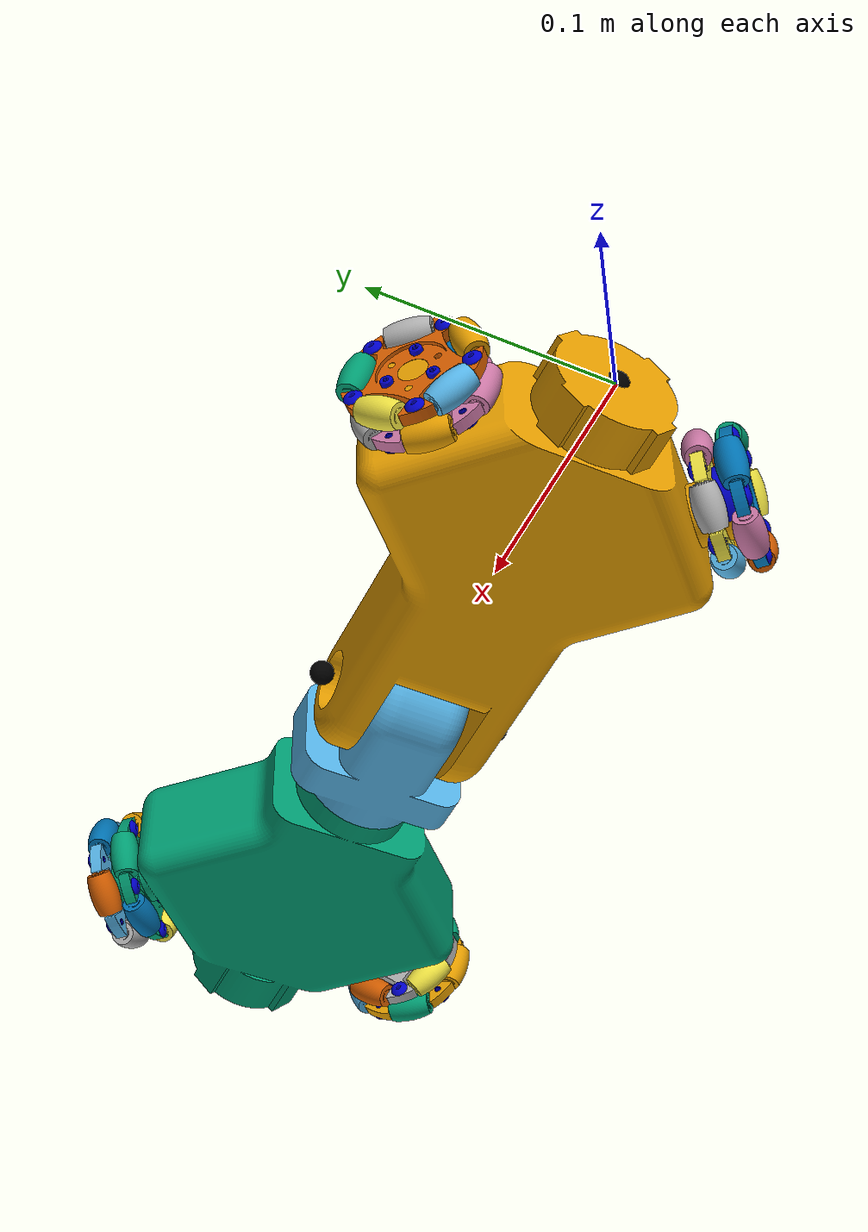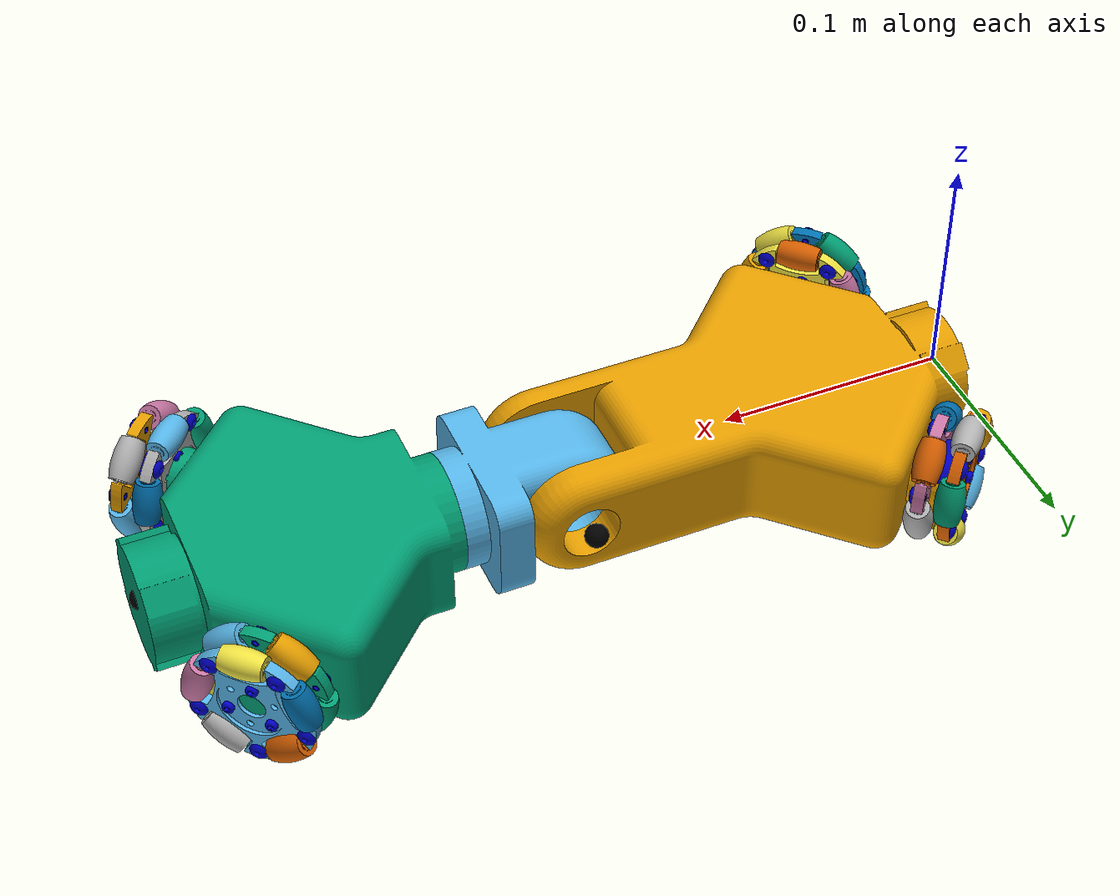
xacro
<?xml version="1.0"?>

 <robot name="mars" xmlns:xacro="http://ros.org/wiki/xacro">

<xacro:include filename="$(find my_mars_description)/urdf/materials.xacro" />

<xacro:include filename="$(find my_mars_description)/urdf/mars_modul_macro.urdf.xacro" />

<xacro:include filename="$(find my_mars_description)/urdf/mars.gazebo.xacro" />
<xacro:include filename="$(find my_mars_description)/urdf/mars.transmission.xacro" />
<xacro:include filename="$(find my_mars_description)/urdf/mars_wheel_macro.urdf.xacro" />

  <xacro:modul modul_num="1"/>

</robot>

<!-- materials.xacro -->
<robot xmlns:xacro="http://www.ros.org/wiki/xacro">
    <material name="red">
        <color rgba="0.8 0 0 1"/>
    </material>

    <material name="green">
        <color rgba="0 0.8 0 1"/>
    </material>

    <material name="blue">
        <color rgba="0 0 0.8 1"/>
    </material>

    <material name="white">
        <color rgba="1 1 1 1" />
    </material>

    <material name="black">
        <color rgba="0 0 0 1" />
    </material>

</robot>

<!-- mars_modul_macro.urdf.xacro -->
<robot name="modul1" xmlns:xacro="http://ros.org/wiki/xacro">

<xacro:include filename="$(find my_mars_description)/urdf/inert.xacro" />

<xacro:macro name="modul" params="modul_num">
  <link name="bodyZ_${modul_num}">
     <xacro:box_inertial w="0.07" h="0.035" d="0.02" m="0.05"/>
    <collision>
      <origin xyz="-0.05 0.108 -0.045" rpy="${pi/2} 0 0"/>
      <geometry>
        <mesh filename="package://my_mars_description/meshes/link1.stl" scale="0.001 0.001 0.001"/>
      </geometry>
    </collision>
    <visual>
      <origin xyz="-0.05 0.108 -0.045" rpy="${pi/2} 0 0"/>
      <geometry>
        <mesh filename="package://my_mars_description/meshes/link1.stl" scale="0.001 0.001 0.001"/>
      </geometry>
    </visual>

  </link>

  <joint name="axial_roll_joint_${modul_num}" type="continuous">
     <origin xyz="0.1375 0 0" rpy="0 0 0"/>
     <parent link="bodyZ_${modul_num}" />
     <child link="leverX_${modul_num}" />
     <axis xyz="0 1 0"/>
     <limit effort="100.0" lower="-${pi/2}" upper="${pi/2}" velocity="5.0" />
   </joint>

   <link name="leverX_${modul_num}">
    <xacro:box_inertial w="0.07" h="0.125" d="0.02" m="0.25"/>
    <collision>
      <origin xyz="-0.1875 0.108 -0.045" rpy="${pi/2} 0 0"/>
      <geometry>
        <mesh filename="package://my_mars_description/meshes/link2.stl" scale="0.001 0.001 0.001"/>
      </geometry>
    </collision>
    <visual>
      <origin xyz="-0.1875 0.108 -0.045" rpy="${pi/2} 0 0"/>
      <geometry>
        <mesh filename="package://my_mars_description/meshes/link2.stl" scale="0.001 0.001 0.001"/>
      </geometry>
    </visual>

  </link>

  <joint name="axial_pitch_joint_${modul_num}" type="continuous">
     <origin xyz="0 0 0" rpy="0 0 0"/>
     <parent link="leverX_${modul_num}" />
     <child link="bodyX_${modul_num}" />
     <axis xyz="1 0 0"/>
     <limit effort="100.0" lower="-${pi/2}" upper="${pi/2}" velocity="5.0" />
   </joint>

   <link name="bodyX_${modul_num}">
     <xacro:box_inertial w="0.07" h="0.035" d="0.02" m="0.05"/>
    <collision>
      <origin xyz="-0.1875 0.108 -0.045" rpy="${pi/2} 0 0"/>
      <geometry>
        <mesh filename="package://my_mars_description/meshes/link3.stl" scale="0.001 0.001 0.001"/>
      </geometry>
    </collision>
    <visual>
      <origin xyz="-0.1875 0.108 -0.045" rpy="${pi/2} 0 0"/>
      <geometry>
        <mesh filename="package://my_mars_description/meshes/link3.stl" scale="0.001 0.001 0.001"/>
      </geometry>
    </visual>
  </link>

  <joint name="wheel_fixed1_${modul_num}" type="fixed">
    <origin xyz="-0.01 0.065 0" rpy="0 0 ${pi/4}" />
    <parent link="bodyZ_${modul_num}" />
    <child link="empty_wheel_1_${modul_num}" />
  </joint>

  <xacro:wheel wheel_num="1" modul_num="${modul_num}"/>-->

  <joint name="wheel_fixed2_${modul_num}" type="fixed">
    <origin xyz="-0.01 -0.065 0" rpy="0 0 -${pi/4}" />
    <parent link="bodyZ_${modul_num}" />
    <child link="empty_wheel_2_${modul_num}" />
  </joint>

  <xacro:wheel wheel_num="2" modul_num="${modul_num}"/>-->

  <joint name="wheel_fixed3_${modul_num}" type="fixed">
    <origin xyz="0.15 0.065 0" rpy="0 0 -${pi/4}" />
    <parent link="bodyX_${modul_num}" />
    <child link="empty_wheel_3_${modul_num}" />
  </joint>

  <xacro:wheel wheel_num="3" modul_num="${modul_num}"/>-->

  <joint name="wheel_fixed4_${modul_num}" type="fixed">
    <origin xyz="0.15 -0.065 0" rpy="0 0 ${pi/4}" />
    <parent link="bodyX_${modul_num}" />
    <child link="empty_wheel_4_${modul_num}" />
  </joint>

  <xacro:wheel wheel_num="4" modul_num="${modul_num}"/>-->

   <joint name="left_connector_joint_${modul_num}" type="fixed">
    <origin xyz="0.1375 0.04 0" rpy="0 0 0" />
    <parent link="bodyZ_${modul_num}" />
    <child link="left_connector_${modul_num}" />
  </joint>
  <xacro:empty_link name="left_connector_${modul_num}"/>

   <joint name="right_connector_joint_${modul_num}" type="fixed">
    <origin xyz="0.1375 -0.038 0" rpy="0 0 0" />
    <parent link="bodyZ_${modul_num}" />
    <child link="right_connector_${modul_num}" />
  </joint>
  <xacro:empty_link name="right_connector_${modul_num}"/>

   <joint name="back_connector_joint_${modul_num}" type="fixed">
    <origin xyz="0.04 0 0" rpy="0 0 0" />
    <parent link="back_connector_${modul_num}"/>
    <child link="bodyZ_${modul_num}" />
  </joint>
  <xacro:empty_link name="back_connector_${modul_num}"/>

   <joint name="front_connector_joint_${modul_num}" type="fixed">
    <origin xyz="0.1775 0 0" rpy="0 0 0" />
    <parent link="bodyX_${modul_num}" />
    <child link="front_connector_${modul_num}" />
  </joint>
  <xacro:empty_link name="front_connector_${modul_num}"/>
</xacro:macro>

<xacro:macro name="modul_left" params="modul_num">
  <link name="bodyZ_${modul_num}">
    <xacro:empty_inertial />
    <collision>
      <origin xyz="-0.05 0.108 -0.045" rpy="${pi/2} 0 0"/>
      <geometry>
        <mesh filename="package://my_mars_description/meshes/link1.stl" scale="0.001 0.001 0.001"/>
      </geometry>
    </collision>
    <visual>
      <origin xyz="-0.05 0.108 -0.045" rpy="${pi/2} 0 0"/>
      <geometry>
        <mesh filename="package://my_mars_description/meshes/link1.stl" scale="0.001 0.001 0.001"/>
      </geometry>
    </visual>

  </link>

  <joint name="axial_roll_joint_${modul_num}" type="revolute">
     <origin xyz="0.1375 0 0" rpy="0 0 0"/>
     <parent link="bodyZ_${modul_num}" />
     <child link="leverX_${modul_num}" />
     <axis xyz="0 1 0"/>
     <limit effort="100.0" lower="-${pi/2}" upper="${pi/2}" velocity="5.0" />
   </joint>

   <link name="leverX_${modul_num}">
    <xacro:empty_inertial />
    <collision>
      <origin xyz="-0.1875 0.108 -0.045" rpy="${pi/2} 0 0"/>
      <geometry>
        <mesh filename="package://my_mars_description/meshes/link2.stl" scale="0.001 0.001 0.001"/>
      </geometry>
    </collision>
    <visual>
      <origin xyz="-0.1875 0.108 -0.045" rpy="${pi/2} 0 0"/>
      <geometry>
        <mesh filename="package://my_mars_description/meshes/link2.stl" scale="0.001 0.001 0.001"/>
      </geometry>
    </visual>

  </link>

  <joint name="axial_pitch_joint_${modul_num}" type="revolute">
     <origin xyz="0 0 0" rpy="0 0 0"/>
     <parent link="leverX_${modul_num}" />
     <child link="bodyX_${modul_num}" />
     <axis xyz="1 0 0"/>
     <limit effort="100.0" lower="-${pi/2}" upper="${pi/2}" velocity="5.0" />
   </joint>

   <link name="bodyX_${modul_num}">
    <xacro:empty_inertial />
    <collision>
      <origin xyz="-0.1875 0.108 -0.045" rpy="${pi/2} 0 0"/>
      <geometry>
        <mesh filename="package://my_mars_description/meshes/link3.stl" scale="0.001 0.001 0.001"/>
      </geometry>
    </collision>
    <visual>
      <origin xyz="-0.1875 0.108 -0.045" rpy="${pi/2} 0 0"/>
      <geometry>
        <mesh filename="package://my_mars_description/meshes/link3.stl" scale="0.001 0.001 0.001"/>
      </geometry>
    </visual>
  </link>

  <joint name="wheel_fixed1_${modul_num}" type="fixed">
    <origin xyz="-0.01 0.065 0" rpy="0 0 ${pi/4}" />
    <parent link="bodyZ_${modul_num}" />
    <child link="empty_wheel_1_${modul_num}" />
  </joint>

  <xacro:wheel wheel_num="1" modul_num="${modul_num}"/>-->

  <joint name="wheel_fixed2_${modul_num}" type="fixed">
    <origin xyz="-0.01 -0.065 0" rpy="0 0 -${pi/4}" />
    <parent link="bodyZ_${modul_num}" />
    <child link="empty_wheel_2_${modul_num}" />
  </joint>

  <xacro:wheel wheel_num="2" modul_num="${modul_num}"/>-->

  <joint name="wheel_fixed3_${modul_num}" type="fixed">
    <origin xyz="0.15 0.065 0" rpy="0 0 -${pi/4}" />
    <parent link="bodyX_${modul_num}" />
    <child link="empty_wheel_3_${modul_num}" />
  </joint>

  <xacro:wheel wheel_num="3" modul_num="${modul_num}"/>-->

  <joint name="wheel_fixed4_${modul_num}" type="fixed">
    <origin xyz="0.15 -0.065 0" rpy="0 0 ${pi/4}" />
    <parent link="bodyX_${modul_num}" />
    <child link="empty_wheel_4_${modul_num}" />
  </joint>

  <xacro:wheel wheel_num="4" modul_num="${modul_num}"/>-->

   <joint name="left_connector_joint_${modul_num}" type="fixed">
    <origin xyz="-0.1375 -0.04 0" rpy="0 0 0" />
    <parent link="left_connector_${modul_num}" />
    <child link="bodyZ_${modul_num}" />
  </joint>
  <xacro:empty_link name="left_connector_${modul_num}"/>

   <joint name="right_connector_joint_${modul_num}" type="fixed">
    <origin xyz="0.1375 -0.038 0" rpy="0 0 0" />
    <parent link="bodyZ_${modul_num}" />
    <child link="right_connector_${modul_num}" />
  </joint>
  <xacro:empty_link name="right_connector_${modul_num}"/>

   <joint name="back_connector_joint_${modul_num}" type="fixed">
    <origin xyz="0.04 0 0" rpy="0 0 0" />
    <parent link="bodyZ_${modul_num}"/>
    <child link="back_connector_${modul_num}" />
  </joint>
  <xacro:empty_link name="back_connector_${modul_num}"/>

   <joint name="front_connector_joint_${modul_num}" type="fixed">
    <origin xyz="0.1775 0 0" rpy="0 0 0" />
    <parent link="bodyX_${modul_num}" />
    <child link="front_connector_${modul_num}" />
  </joint>
  <xacro:empty_link name="front_connector_${modul_num}"/>
</xacro:macro>

<xacro:macro name="modul_right" params="modul_num">
  <link name="bodyZ_${modul_num}">
    <xacro:empty_inertial />
    <collision>
      <origin xyz="-0.05 0.108 -0.045" rpy="${pi/2} 0 0"/>
      <geometry>
        <mesh filename="package://my_mars_description/meshes/link1.stl" scale="0.001 0.001 0.001"/>
      </geometry>
    </collision>
    <visual>
      <origin xyz="-0.05 0.108 -0.045" rpy="${pi/2} 0 0"/>
      <geometry>
        <mesh filename="package://my_mars_description/meshes/link1.stl" scale="0.001 0.001 0.001"/>
      </geometry>
    </visual>

  </link>

  <joint name="axial_roll_joint_${modul_num}" type="revolute">
     <origin xyz="0.1375 0 0" rpy="0 0 0"/>
     <parent link="bodyZ_${modul_num}" />
     <child link="leverX_${modul_num}" />
     <axis xyz="0 1 0"/>
     <limit effort="100.0" lower="-${pi/2}" upper="${pi/2}" velocity="5.0" />
   </joint>

   <link name="leverX_${modul_num}">
    <xacro:empty_inertial />
    <collision>
      <origin xyz="-0.1875 0.108 -0.045" rpy="${pi/2} 0 0"/>
      <geometry>
        <mesh filename="package://my_mars_description/meshes/link2.stl" scale="0.001 0.001 0.001"/>
      </geometry>
    </collision>
    <visual>
      <origin xyz="-0.1875 0.108 -0.045" rpy="${pi/2} 0 0"/>
      <geometry>
        <mesh filename="package://my_mars_description/meshes/link2.stl" scale="0.001 0.001 0.001"/>
      </geometry>
    </visual>
  </link>

  <joint name="axial_pitch_joint_${modul_num}" type="revolute">
     <origin xyz="0 0 0" rpy="0 0 0"/>
     <parent link="leverX_${modul_num}" />
     <child link="bodyX_${modul_num}" />
     <axis xyz="1 0 0"/>
     <limit effort="100.0" lower="-${pi/2}" upper="${pi/2}" velocity="5.0" />
   </joint>

   <link name="bodyX_${modul_num}">
    <xacro:empty_inertial />
    <collision>
      <origin xyz="-0.1875 0.108 -0.045" rpy="${pi/2} 0 0"/>
      <geometry>
        <mesh filename="package://my_mars_description/meshes/link3.stl" scale="0.001 0.001 0.001"/>
      </geometry>
    </collision>
    <visual>
      <origin xyz="-0.1875 0.108 -0.045" rpy="${pi/2} 0 0"/>
      <geometry>
        <mesh filename="package://my_mars_description/meshes/link3.stl" scale="0.001 0.001 0.001"/>
      </geometry>
    </visual>
  </link>

  <joint name="wheel_fixed1_${modul_num}" type="fixed">
    <origin xyz="-0.01 0.065 0" rpy="0 0 ${pi/4}" />
    <parent link="bodyZ_${modul_num}" />
    <child link="empty_wheel_1_${modul_num}" />
  </joint>

  <xacro:wheel wheel_num="1" modul_num="${modul_num}"/>-->

  <joint name="wheel_fixed2_${modul_num}" type="fixed">
    <origin xyz="-0.01 -0.065 0" rpy="0 0 -${pi/4}" />
    <parent link="bodyZ_${modul_num}" />
    <child link="empty_wheel_2_${modul_num}" />
  </joint>

  <xacro:wheel wheel_num="2" modul_num="${modul_num}"/>-->

  <joint name="wheel_fixed3_${modul_num}" type="fixed">
    <origin xyz="0.15 0.065 0" rpy="0 0 -${pi/4}" />
    <parent link="bodyX_${modul_num}" />
    <child link="empty_wheel_3_${modul_num}" />
  </joint>

  <xacro:wheel wheel_num="3" modul_num="${modul_num}"/>-->

  <joint name="wheel_fixed4_${modul_num}" type="fixed">
    <origin xyz="0.15 -0.065 0" rpy="0 0 ${pi/4}" />
    <parent link="bodyX_${modul_num}" />
    <child link="empty_wheel_4_${modul_num}" />
  </joint>

  <xacro:wheel wheel_num="4" modul_num="${modul_num}"/>-->

   <joint name="left_connector_joint_${modul_num}" type="fixed">
    <origin xyz="0.1375 0.04 0" rpy="0 0 0" />
    <parent link="bodyZ_${modul_num}" />
    <child link="left_connector_${modul_num}" />
  </joint>
  <xacro:empty_link name="left_connector_${modul_num}"/>

   <joint name="right_connector_joint_${modul_num}" type="fixed">
    <origin xyz="-0.1375 0.038 0" rpy="0 0 0" />
    <parent link="right_connector_${modul_num}" />
    <child link="bodyZ_${modul_num}" />
  </joint>
  <xacro:empty_link name="right_connector_${modul_num}"/>

   <joint name="back_connector_joint_${modul_num}" type="fixed">
    <origin xyz="-0.04 0 0" rpy="0 0 0" />
    <parent link="bodyZ_${modul_num}"/>
    <child link="back_connector_${modul_num}"/>
  </joint>
  <xacro:empty_link name="back_connector_${modul_num}"/>

   <joint name="front_connector_joint_${modul_num}" type="fixed">
    <origin xyz="0.1775 0 0" rpy="0 0 0" />
    <parent link="bodyX_${modul_num}" />
    <child link="front_connector_${modul_num}" />
  </joint>
  <xacro:empty_link name="front_connector_${modul_num}"/>
</xacro:macro>

</robot>

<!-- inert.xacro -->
<robot xmlns:xacro="http://www.ros.org/wiki/xacro">
    <xacro:macro name="empty_inertial" params="">
        <inertial>
            <mass value="0.0001" />
            <inertia
                    ixx="0.0001" ixy="0.0" ixz="0.0"
                    iyy="0.0001" iyz="0.0"
                    izz="0.0001" />
        </inertial>
    </xacro:macro>

    <xacro:macro name="empty_gazebo_link" params="">
        <visual>
            <geometry>
                <sphere radius="0.005"/>
            </geometry>
            <material name="red" />
        </visual>
        <xacro:empty_inertial />
    </xacro:macro>

    <xacro:macro name="cylinder_inertial" params="r l m">
        <inertial>
            <mass value="${m}" />
            <inertia
                    ixx="${(1.0/12.0)*m*(3.0*r*r + l*l)}" ixy="0.0" ixz="0.0"
                    iyy="${(1.0/12.0)*m*(3.0*r*r + l*l)}" iyz="0.0"
                    izz="${(1.0/2.0)*m*r*r}" />
        </inertial>
    </xacro:macro>

    <xacro:macro name="box_inertial" params="w h d m">
        <inertial>
            <mass value="${m}" />
            <inertia
                    ixx="${(1.0/12.0)*m*(h*h + d*d)}" ixy="0.0" ixz="0.0"
                    iyy="${(1.0/12.0)*m*(w*w + d*d)}" iyz="0.0"
                    izz="${(1.0/12.0)*m*(w*w + h*h)}" />
        </inertial>
    </xacro:macro>

</robot>

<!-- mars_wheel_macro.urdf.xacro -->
<robot name="wheel" xmlns:xacro="http://ros.org/wiki/xacro">

  <xacro:include filename="$(find my_mars_description)/urdf/inert.xacro" />

    <xacro:macro name="empty_link" params="name">
      <link name="${name}">
        <visual>
          <geometry>
            <sphere radius="0.005"/>
          </geometry>
          <material name="black" />
        </visual>
        <xacro:empty_inertial />
      </link>
    </xacro:macro>

<xacro:macro name="wheel" params="wheel_num modul_num">

  <xacro:empty_link name="empty_wheel_${wheel_num}_${modul_num}"/>

  <joint name="wheel_continuous_${wheel_num}_${modul_num}" type="fixed">
    <origin xyz="0 0 0" rpy="0 0 0"/>
    <axis xyz="0 1 0" />
    <parent link="empty_wheel_${wheel_num}_${modul_num}"/>
    <child link="base_wheel_link_${wheel_num}_${modul_num}"/>
  </joint>
  <xacro:SimpleTransmissionVel joint="wheel_continuous_${wheel_num}_${modul_num}"/>

  <link name="base_wheel_link_${wheel_num}_${modul_num}">
    <xacro:empty_inertial />
    <collision>
      <origin xyz="0.043 0.0945 -0.152" rpy="0 -${pi/4} ${pi/2}"/>
      <geometry>
        <mesh filename="package://my_mars_description/meshes/wheel_dops.stl" scale="0.001 0.001 0.001"/>
      </geometry>
      <material name="blue" />
    </collision>
    <visual>
      <origin xyz="0.043 0.0945 -0.152" rpy="0 -${pi/4} ${pi/2}"/>
      <geometry>
        <mesh filename="package://my_mars_description/meshes/wheel_dops.stl" scale="0.001 0.001 0.001"/>
      </geometry>
      <material name="blue" />
    </visual>
  </link>

  <joint name="wheel_out_joint_${wheel_num}_${modul_num}" type="fixed">
    <origin xyz="0 0 0" rpy="0 0 0"/>
    <parent link="base_wheel_link_${wheel_num}_${modul_num}"/>
    <child link="wheel_out_${wheel_num}_${modul_num}"/>
  </joint>

  <joint name="wheel_in_joint_${wheel_num}_${modul_num}" type="fixed">
    <origin xyz="0 0 0" rpy="0 0 0"/>
    <parent link="base_wheel_link_${wheel_num}_${modul_num}"/>
    <child link="wheel_in_${wheel_num}_${modul_num}"/>
  </joint>

  <link name="wheel_in_${wheel_num}_${modul_num}">
    <xacro:empty_inertial />
    <collision>
      <origin xyz="0.043 0.0945 -0.152" rpy="0 -${pi/4} ${pi/2}"/>
      <geometry>
        <mesh filename="package://my_mars_description/meshes/wheel_out1.stl" scale="0.001 0.001 0.001"/>
      </geometry>
    </collision>
    <visual>
      <origin xyz="0.043 0.0945 -0.152" rpy="0 -${pi/4} ${pi/2}"/>
      <geometry>
        <mesh filename="package://my_mars_description/meshes/wheel_out1.stl" scale="0.001 0.001 0.001"/>
      </geometry>
    </visual>
  </link>

  <link name="wheel_out_${wheel_num}_${modul_num}">
    <xacro:empty_inertial />
  <collision>
    <origin xyz="0.043 0.0945 -0.152" rpy="0 -${pi/4} ${pi/2}"/>
      <geometry>
        <mesh filename="package://my_mars_description/meshes/wheel_out2.stl" scale="0.001 0.001 0.001"/>
      </geometry>
    </collision>
  <visual>
    <origin xyz="0.043 0.0945 -0.152" rpy="0 -${pi/4} ${pi/2}"/>
      <geometry>
        <mesh filename="package://my_mars_description/meshes/wheel_out2.stl" scale="0.001 0.001 0.001"/>
      </geometry>
    </visual>
  </link>

  <joint name="rubberwheel_joint_1_${wheel_num}_${modul_num}" type="fixed">
    <origin xyz="0.000 0.006 0.023" rpy="0 0 0"/>
    <axis xyz="1 0 0" />

    <parent link="base_wheel_link_${wheel_num}_${modul_num}"/>
    <child link="rubberwheel_1_${wheel_num}_${modul_num}"/>
  </joint>

  <link name="rubberwheel_1_${wheel_num}_${modul_num}">
    <xacro:empty_inertial />
  <collision>
    <origin xyz="-0.122 -0.1206 -0.0885" rpy="0 ${pi/4} ${pi/8}"/>
      <geometry>
        <mesh filename="package://my_mars_description/meshes/rubberWheel.stl" scale="0.001 0.001 0.001"/>
      </geometry>
    </collision>
    <visual>
    <origin xyz="-0.122 -0.1206 -0.0885" rpy="0 ${pi/4} ${pi/8}"/>
      <geometry>
        <mesh filename="package://my_mars_description/meshes/rubberWheel.stl" scale="0.001 0.001 0.001"/>
      </geometry>
    </visual>
  </link>

    <joint name="rubberwheel_joint_2_${wheel_num}_${modul_num}" type="fixed">
    <origin xyz="-0.02187429987 0.006 0.00710739087" rpy="0 -${2*pi/5} 0"/>
    <axis xyz="1 0 0" />

    <parent link="base_wheel_link_${wheel_num}_${modul_num}"/>
    <child link="rubberwheel_2_${wheel_num}_${modul_num}"/>
  </joint>

  <link name="rubberwheel_2_${wheel_num}_${modul_num}">
    <xacro:empty_inertial />
  <collision>
    <origin xyz="-0.122 -0.1206 -0.0885" rpy="0 ${pi/4} ${pi/8}"/>
      <geometry>
        <mesh filename="package://my_mars_description/meshes/rubberWheel.stl" scale="0.001 0.001 0.001"/>
      </geometry>
    </collision>
    <visual>
    <origin xyz="-0.122 -0.1206 -0.0885" rpy="0 ${pi/4} ${pi/8}"/>
      <geometry>
        <mesh filename="package://my_mars_description/meshes/rubberWheel.stl" scale="0.001 0.001 0.001"/>
      </geometry>
    </visual>
  </link>

  <joint name="rubberwheel_joint_3_${wheel_num}_${modul_num}" type="fixed">
    <origin xyz="-0.0135190608 0.006 -0.0186073908" rpy="0 -${4*pi/5} 0"/>
    <axis xyz="1 0 0" />

    <parent link="base_wheel_link_${wheel_num}_${modul_num}"/>
    <child link="rubberwheel_3_${wheel_num}_${modul_num}"/>
  </joint>

  <link name="rubberwheel_3_${wheel_num}_${modul_num}">
    <xacro:empty_inertial />
  <collision>
    <origin xyz="-0.122 -0.1206 -0.0885" rpy="0 ${pi/4} ${pi/8}"/>
      <geometry>
        <mesh filename="package://my_mars_description/meshes/rubberWheel.stl" scale="0.001 0.001 0.001"/>
      </geometry>
  </collision>
  <visual>
    <origin xyz="-0.122 -0.1206 -0.0885" rpy="0 ${pi/4} ${pi/8}"/>
      <geometry>
        <mesh filename="package://my_mars_description/meshes/rubberWheel.stl" scale="0.001 0.001 0.001"/>
      </geometry>
    </visual>
  </link>
  <joint name="rubberwheel_joint_4_${wheel_num}_${modul_num}" type="fixed">
    <origin xyz="0.02187429987 0.006 0.00710739087" rpy="0 ${2*pi/5} 0"/>
    <axis xyz="1 0 0" />

    <parent link="base_wheel_link_${wheel_num}_${modul_num}"/>
    <child link="rubberwheel_4_${wheel_num}_${modul_num}"/>
  </joint>

  <link name="rubberwheel_4_${wheel_num}_${modul_num}">
    <xacro:empty_inertial />
  <collision>
    <origin xyz="-0.122 -0.1206 -0.0885" rpy="0 ${pi/4} ${pi/8}"/>
      <geometry>
        <mesh filename="package://my_mars_description/meshes/rubberWheel.stl" scale="0.001 0.001 0.001"/>
      </geometry>
    </collision>
      <visual>
    <origin xyz="-0.122 -0.1206 -0.0885" rpy="0 ${pi/4} ${pi/8}"/>
      <geometry>
        <mesh filename="package://my_mars_description/meshes/rubberWheel.stl" scale="0.001 0.001 0.001"/>
      </geometry>
    </visual>
  </link>
  <joint name="rubberwheel_joint_5_${wheel_num}_${modul_num}" type="fixed">
    <origin xyz="0.0135190608 0.006 -0.0186073908" rpy="0 ${4*pi/5} 0"/>
    <axis xyz="1 0 0" />

    <parent link="base_wheel_link_${wheel_num}_${modul_num}"/>
    <child link="rubberwheel_5_${wheel_num}_${modul_num}"/>
  </joint>

  <link name="rubberwheel_5_${wheel_num}_${modul_num}">
    <xacro:empty_inertial />
  <collision>
    <origin xyz="-0.122 -0.1206 -0.0885" rpy="0 ${pi/4} ${pi/8}"/>
      <geometry>
        <mesh filename="package://my_mars_description/meshes/rubberWheel.stl" scale="0.001 0.001 0.001"/>
      </geometry>
    </collision>
      <visual>
    <origin xyz="-0.122 -0.1206 -0.0885" rpy="0 ${pi/4} ${pi/8}"/>
      <geometry>
        <mesh filename="package://my_mars_description/meshes/rubberWheel.stl" scale="0.001 0.001 0.001"/>
      </geometry>
    </visual>
  </link>
  <joint name="rubberwheel_joint_6_${wheel_num}_${modul_num}" type="fixed">
    <origin xyz="-0.0135190608 -0.006 0.01860739087" rpy="0 -${pi/5} 0"/>
    <axis xyz="1 0 0" />

    <parent link="base_wheel_link_${wheel_num}_${modul_num}"/>
    <child link="rubberwheel_6_${wheel_num}_${modul_num}"/>
  </joint>

  <link name="rubberwheel_6_${wheel_num}_${modul_num}">
    <xacro:empty_inertial />
  <collision>
    <origin xyz="-0.122 -0.1206 -0.0885" rpy="0 ${pi/4} ${pi/8}"/>
      <geometry>
        <mesh filename="package://my_mars_description/meshes/rubberWheel.stl" scale="0.001 0.001 0.001"/>
      </geometry>
    </collision>
      <visual>
    <origin xyz="-0.122 -0.1206 -0.0885" rpy="0 ${pi/4} ${pi/8}"/>
      <geometry>
        <mesh filename="package://my_mars_description/meshes/rubberWheel.stl" scale="0.001 0.001 0.001"/>
      </geometry>
    </visual>
  </link>
  <joint name="rubberwheel_joint_7_${wheel_num}_${modul_num}" type="fixed">
    <origin xyz="0.0135190608 -0.006 0.01860739087" rpy="0 ${pi/5} 0"/>
    <axis xyz="1 0 0" />

    <parent link="base_wheel_link_${wheel_num}_${modul_num}"/>
    <child link="rubberwheel_7_${wheel_num}_${modul_num}"/>
  </joint>

  <link name="rubberwheel_7_${wheel_num}_${modul_num}">
    <xacro:empty_inertial />
  <collision>
    <origin xyz="-0.122 -0.1206 -0.0885" rpy="0 ${pi/4} ${pi/8}"/>
      <geometry>
        <mesh filename="package://my_mars_description/meshes/rubberWheel.stl" scale="0.001 0.001 0.001"/>
      </geometry>
    </collision>
      <visual>
    <origin xyz="-0.122 -0.1206 -0.0885" rpy="0 ${pi/4} ${pi/8}"/>
      <geometry>
        <mesh filename="package://my_mars_description/meshes/rubberWheel.stl" scale="0.001 0.001 0.001"/>
      </geometry>
    </visual>
  </link>
  <joint name="rubberwheel_joint_8_${wheel_num}_${modul_num}" type="fixed">
    <origin xyz="-0.02187429987 -0.006 -0.00710739087" rpy="0 -${3*pi/5} 0"/>
    <axis xyz="1 0 0" />

    <parent link="base_wheel_link_${wheel_num}_${modul_num}"/>
    <child link="rubberwheel_8_${wheel_num}_${modul_num}"/>
  </joint>

  <link name="rubberwheel_8_${wheel_num}_${modul_num}">
    <xacro:empty_inertial />
  <collision>
    <origin xyz="-0.122 -0.1206 -0.0885" rpy="0 ${pi/4} ${pi/8}"/>
      <geometry>
        <mesh filename="package://my_mars_description/meshes/rubberWheel.stl" scale="0.001 0.001 0.001"/>
      </geometry>
    </collision>
      <visual>
    <origin xyz="-0.122 -0.1206 -0.0885" rpy="0 ${pi/4} ${pi/8}"/>
      <geometry>
        <mesh filename="package://my_mars_description/meshes/rubberWheel.stl" scale="0.001 0.001 0.001"/>
      </geometry>
    </visual>
  </link>
  <joint name="rubberwheel_joint_9_${wheel_num}_${modul_num}" type="fixed">
    <origin xyz="0.02187429987 -0.006 -0.00710739087" rpy="0 ${3*pi/5} 0"/>
    <axis xyz="1 0 0" />

    <parent link="base_wheel_link_${wheel_num}_${modul_num}"/>
    <child link="rubberwheel_9_${wheel_num}_${modul_num}"/>
  </joint>

  <link name="rubberwheel_9_${wheel_num}_${modul_num}">
    <xacro:empty_inertial />
  <collision>
    <origin xyz="-0.122 -0.1206 -0.0885" rpy="0 ${pi/4} ${pi/8}"/>
      <geometry>
        <mesh filename="package://my_mars_description/meshes/rubberWheel.stl" scale="0.001 0.001 0.001"/>
      </geometry>
    </collision>
      <visual>
    <origin xyz="-0.122 -0.1206 -0.0885" rpy="0 ${pi/4} ${pi/8}"/>
      <geometry>
        <mesh filename="package://my_mars_description/meshes/rubberWheel.stl" scale="0.001 0.001 0.001"/>
      </geometry>
    </visual>
  </link>

  <joint name="rubberwheel_joint_10_${wheel_num}_${modul_num}" type="fixed">
    <origin xyz="-0.0025 -0.006 -0.023" rpy="0 0 0"/>
    <axis xyz="1 0 0" />

    <parent link="base_wheel_link_${wheel_num}_${modul_num}"/>
    <child link="rubberwheel_10_${wheel_num}_${modul_num}"/>
  </joint>

  <link name="rubberwheel_10_${wheel_num}_${modul_num}">
    <xacro:empty_inertial />
  <collision>
    <origin xyz="-0.122 -0.1206 -0.0885" rpy="0 ${pi/4} ${pi/8}"/>
      <geometry>
        <mesh filename="package://my_mars_description/meshes/rubberWheel.stl" scale="0.001 0.001 0.001"/>
      </geometry>
    </collision>
    <visual>
    <origin xyz="-0.122 -0.1206 -0.0885" rpy="0 ${pi/4} ${pi/8}"/>
      <geometry>
        <mesh filename="package://my_mars_description/meshes/rubberWheel.stl" scale="0.001 0.001 0.001"/>
      </geometry>
    </visual>
  </link>

</xacro:macro>

</robot>
